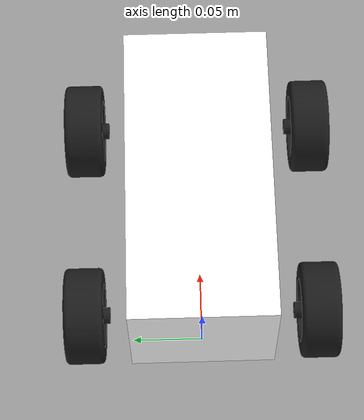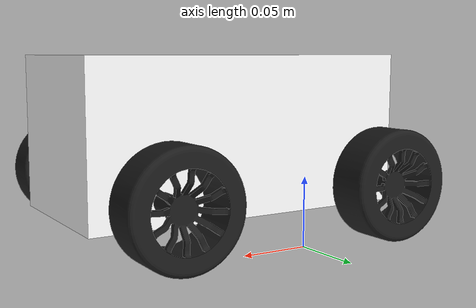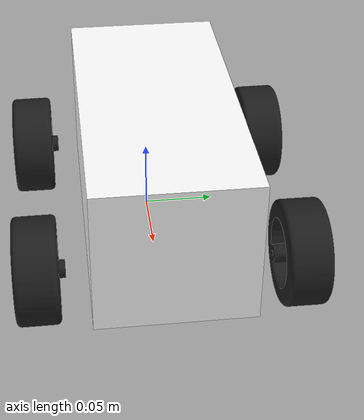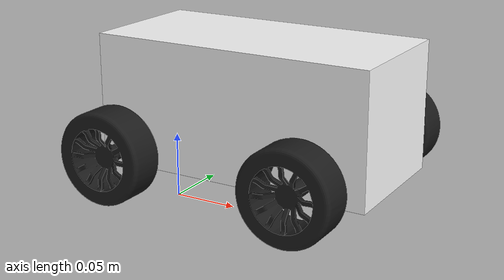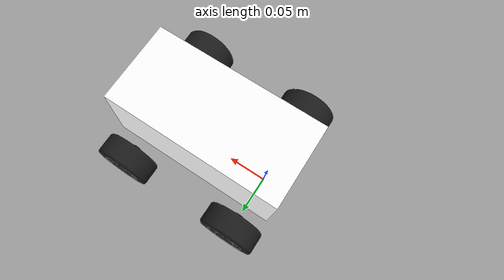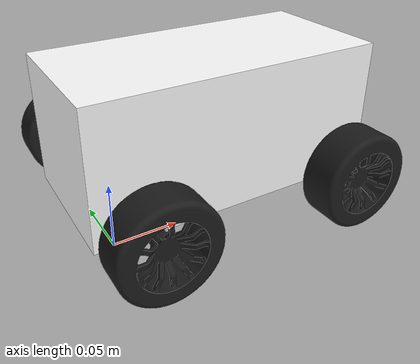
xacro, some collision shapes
<?xml version="1.0" encoding="utf-8"?>

<robot name="racebot" xmlns:xacro="http://www.ros.org/wiki/xacro">

  <!-- Tire rotational resistance: rotation_fiction -->
  <xacro:property name="rotation_fiction" value="1"/>
  <!-- Tire grip: mu-->
  <xacro:property name="mu" value="9999999999.0"/>

  <xacro:include filename="$(find sipder_robot)/xacro/macros.xacro" />

<!-- STL model -->
  <link name="base_footprint"/>
  <joint name="base_link2base_footprint" type="fixed">
    <parent link="base_footprint"/>
    <child link="base_link"/>
    <origin rpy="0 0 0" xyz="0.0 0.0 0.04"/>
  </joint>

  <link name="base_link">
    <visual>
      <origin rpy="0 0 0" xyz="0 0 0"/>
      <geometry>
        <mesh filename="package://sipder_robot/meshes/nanocar/base_link.obj"/>
      </geometry>
      <material name="">
        <color rgba="1 1 1 1"/>
      </material>
    </visual>
    <collision>
      <origin rpy="0 0 0" xyz="0.075 0 0.0475"/>
      <geometry>
        <box size="0.21 0.1 0.095"/>
      </geometry>
    </collision>
  </link>

    <!-- base_inertia -->
    <link name="base_inertia">
      <inertial>
        <origin rpy="0 0 0" xyz="0.072991 0.00046853 0.039966"/>
        <mass value="0.45437"/>
        <inertia ixx="0.00029844" ixy="-4.3951E-06" ixz="-2.191E-06" iyy="0.00043198" iyz="3.005E-07" izz="0.00068218"/>
      </inertial>
    </link>

    <!-- chassis_inertia_joint -->
    <joint name="chassis_inertia_joint" type="fixed">
      <origin xyz="0 0 0" rpy="0 0 0" />
      <parent link="base_link" />
      <child link="base_inertia" />
    </joint>

  <link name="left_front_wheel">
    <inertial>
      <origin rpy="0 0 0" xyz="-1.914E-05 -4.1633E-16 -0.0055056"/>
      <mass value="0.056134"/>
      <inertia ixx="2.4529E-05" ixy="1.012E-19" ixz="6.1905E-08" iyy="2.4528E-05" iyz="1.0409E-17" izz="4.2335E-05"/>
    </inertial>
    <visual>
      <origin rpy="0 0 0" xyz="0 0 0"/>
      <geometry>
        <mesh filename="package://sipder_robot/meshes/nanocar/front_left_wheel_link.obj"/>
      </geometry>
      <material name="">
        <color rgba="0.1098 0.1098 0.1098 1"/>
      </material>
    </visual>
    <collision>
      <origin rpy="0 0 0" xyz="0 0 0"/>
      <geometry>
        <mesh filename="package://sipder_robot/meshes/nanocar/front_left_wheel_link.obj"/>
      </geometry>
    </collision>
    <xacro:wheel_friction name="${mu}" />
  </link>
  <joint name="left_front_wheel_joint" type="continuous">
    <origin rpy="0 0 0" xyz="0 0 0.03725"/>
    <parent link="left_steering_hinge"/>
    <child link="left_front_wheel"/>
    <axis xyz="0 0 1"/>
  </joint>
  <xacro:wheel_transmission name="left_front_wheel" />

  <link name="left_steering_hinge">
    <inertial>
      <origin xyz="0 0 0" />
      <mass value="0.5" />
      <inertia ixx="1.35E-05" ixy="0" ixz="0" iyy="1.35E-05" iyz="0" izz="2.5E-05" />
    </inertial>
  </link>
  <joint name="left_steering_hinge_joint" type="revolute">
    <parent link="base_link"/>
    <child link="left_steering_hinge"/>
    <origin rpy="-1.5708 0 0" xyz="0.14338 0.05 0.0179"/>
    <limit effort="30" velocity="2.0" lower="-0.7854" upper="0.7854" />
    <axis xyz="0 -1 0"/>
  </joint>
  <xacro:steering_hinge_transmission name="left_steering_hinge" />

  <link name="right_front_wheel">
    <inertial>
      <origin rpy="0 0 0" xyz="-1.914E-05 -4.1633E-16 -0.0055056"/>
      <mass value="0.056134"/>
      <inertia ixx="2.4529E-05" ixy="1.012E-19" ixz="6.1905E-08" iyy="2.4528E-05" iyz="1.0409E-17" izz="4.2335E-05"/>
    </inertial>
    <visual>
      <origin rpy="0 0 0" xyz="0 0 0"/>
      <geometry>
        <mesh filename="package://sipder_robot/meshes/nanocar/front_right_wheel_link.obj"/>
      </geometry>
      <material name="">
        <color rgba="0.1098 0.1098 0.1098 1"/>
      </material>
    </visual>
    <collision>
      <origin rpy="0 0 0" xyz="0 0 0"/>
      <geometry>
        <mesh filename="package://sipder_robot/meshes/nanocar/front_right_wheel_link.obj"/>
      </geometry>
    </collision>
    <xacro:wheel_friction name="${mu}" />
  </link>
  <joint name="right_front_wheel_joint" type="continuous">
    <origin rpy="0 0 0" xyz="0 0 0.03725"/>
    <parent link="right_steering_hinge"/>
    <child link="right_front_wheel"/>
    <axis xyz="0 0 -1"/>
  </joint>
  <xacro:wheel_transmission name="right_front_wheel" />

  <link name="right_steering_hinge">
    <inertial>
      <origin xyz="0 0 0" />
      <mass value="0.5" />
      <inertia ixx="1.35E-05" ixy="0" ixz="0" iyy="1.35E-05" iyz="0" izz="2.5E-05" />
    </inertial>
  </link>
  <joint name="right_steering_hinge_joint" type="revolute">
    <parent link="base_link"/>
    <child link="right_steering_hinge"/>
    <origin rpy="-1.5708 0 -3.1416" xyz="0.14338 -0.05 0.0179"/>
    <limit effort="30" velocity="2.0" lower="-0.7854" upper="0.7854" />
    <axis xyz="0 -1 0"/>
  </joint>
  <xacro:steering_hinge_transmission name="right_steering_hinge" />

  <link name="left_rear_wheel">
    <inertial>
      <origin rpy="0 0 0" xyz="-1.914E-05 -4.1633E-16 -0.0055056"/>
      <mass value="0.056134"/>
      <inertia ixx="2.4529E-05" ixy="1.012E-19" ixz="6.1905E-08" iyy="2.4528E-05" iyz="1.0409E-17" izz="4.2335E-05"/>
    </inertial>
    <visual>
      <origin rpy="0 0 0" xyz="0 0 0"/>
      <geometry>
        <mesh filename="package://sipder_robot/meshes/nanocar/back_left_wheel_link.obj"/>
      </geometry>
      <material name="">
        <color rgba="0.1098 0.1098 0.1098 1"/>
      </material>
    </visual>
    <collision>
      <origin rpy="0 0 0" xyz="0 0 0"/>
      <geometry>
        <mesh filename="package://sipder_robot/meshes/nanocar/back_left_wheel_link.obj"/>
      </geometry>
    </collision>
    <xacro:wheel_friction name="${mu}" />
  </link>
  <joint name="left_rear_wheel_joint" type="continuous">
    <origin rpy="-1.5708 0 0" xyz="-0.00015 0.08725 0.0179"/>
    <parent link="base_link"/>
    <child link="left_rear_wheel"/>
    <axis xyz="0 0 1"/>
  </joint>
  <xacro:wheel_transmission name="left_rear_wheel" />

  <link name="right_rear_wheel">
    <inertial>
      <origin rpy="0 0 0" xyz="-1.914E-05 -4.1633E-16 -0.0055056"/>
      <mass value="0.056134"/>
      <inertia ixx="2.4529E-05" ixy="1.012E-19" ixz="6.1905E-08" iyy="2.4528E-05" iyz="1.0409E-17" izz="4.2335E-05"/>
    </inertial>
    <visual>
      <origin rpy="0 0 0" xyz="0 0 0"/>
      <geometry>
        <mesh filename="package://sipder_robot/meshes/nanocar/back_right_wheel_link.obj"/>
      </geometry>
      <material name="">
        <color rgba="0.1098 0.1098 0.1098 1"/>
      </material>
    </visual>
    <collision>
      <origin rpy="0 0 0" xyz="0 0 0"/>
      <geometry>
        <mesh filename="package://sipder_robot/meshes/nanocar/back_right_wheel_link.obj"/>
      </geometry>
    </collision>
    <xacro:wheel_friction name="${mu}" />
  </link>
  <joint name="right_rear_wheel_joint" type="continuous">
    <origin rpy="-1.5708 0 3.1416" xyz="0.00015 -0.08725 0.0179"/>
    <parent link="base_link"/>
    <child link="right_rear_wheel"/>
    <axis xyz="0 0 -1"/>
  </joint>
  <xacro:wheel_transmission name="right_rear_wheel" />

  <!-- laser -->
  <link name="base_laser_link"/>
  <joint name="laser_joint" type="fixed">
    <origin rpy="0 0 3.1416" xyz="0.11449 0 0.141"/>
    <parent link="base_link"/>
    <child link="base_laser_link"/>
    <axis xyz="0 0 0"/>
  </joint>

  <!-- rgb camera -->
  <link name="base_camera_link"/>
  <joint name="camera_joint" type="fixed">
    <origin rpy="0 0 0" xyz="0.15917 0.019164 0.073"/>
    <parent link="base_link"/>
    <child link="base_camera_link"/>
    <axis xyz="0 0 0"/>
  </joint>

  <!-- imu -->
  <link name="imu"/>
  <joint name="imu_joint" type="fixed">
    <origin rpy="0 0 0" xyz="0.0653 -0.0275 0.07671"/>
    <parent link="base_link"/>
    <child link="imu"/>
    <axis xyz="0 0 0"/>
  </joint>

  <!-- ir camera -->
  <link name="camera_link"/>
  <joint name="ir_camera_joint" type="fixed">
    <origin rpy="0 0 0" xyz="0.15917 0.039164 0.073"/>
    <parent link="base_link"/>
    <child link="camera_link"/>
    <axis xyz="0 0 0"/>
  </joint>

  <xacro:include filename="$(find sipder_robot)/xacro/racecar.gazebo" />

</robot>
